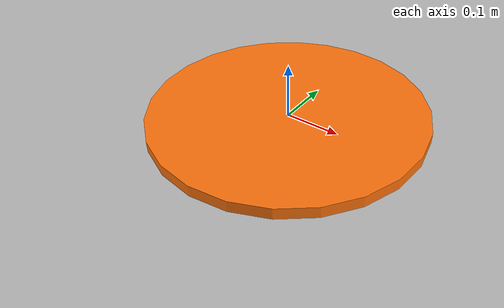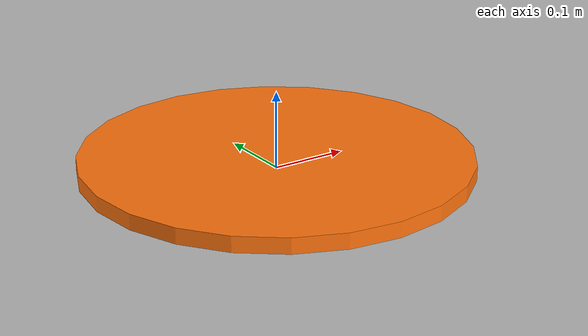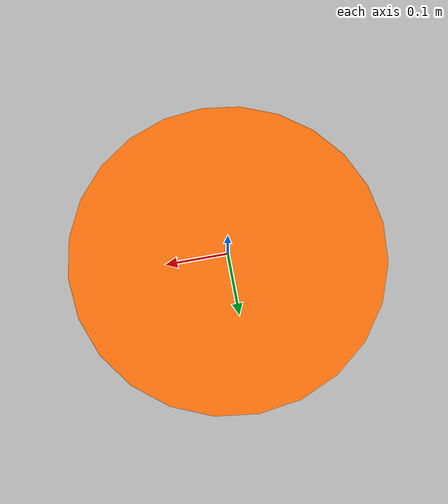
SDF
<?xml version="1.0" encoding="UTF-8"?>
<sdf version="1.9">
  <world name="allsmoke">

    <physics type="ode">
      <max_step_size>0.004</max_step_size>
      <real_time_factor>1.0</real_time_factor>
      <real_time_update_rate>250</real_time_update_rate>
    </physics>
    <gravity>0 0 -9.8</gravity>
    <magnetic_field>6e-06 2.3e-05 -4.2e-05</magnetic_field>
    <atmosphere type="adiabatic"/>

    <scene>
      <grid>false</grid>
      <ambient>0.45 0.45 0.45 1</ambient>
      <background>0.62 0.72 0.85 1</background>
      <shadows>true</shadows>
    </scene>

    <light name="sunUTC" type="directional">
      <pose>0 0 500 0 0 0</pose>
      <cast_shadows>true</cast_shadows>
      <intensity>1</intensity>
      <direction>0.3 0.5 -0.81</direction>
      <diffuse>0.95 0.93 0.88 1</diffuse>
      <specular>0.3 0.3 0.3 1</specular>
      <attenuation>
        <range>2000</range>
        <linear>0</linear>
        <constant>1</constant>
        <quadratic>0</quadratic>
      </attenuation>
      <spot>
        <inner_angle>0</inner_angle>
        <outer_angle>0</outer_angle>
        <falloff>0</falloff>
      </spot>
    </light>

    <include>
      <uri>model://allsmoke_terrain</uri>
      <name>allsmoke_terrain</name>
      <pose>0 0 0 0 0 0</pose>
    </include>

    <!-- The survey fiducial. FIDUCIAL_SURVEYED_* in .env holds its
         coordinate; the drone measures it to align frames. -->
    <model name="fiducial_marker">
      <static>true</static>
      <pose>0.000 0.000 0.012 0 0 0.0000</pose>
      <link name="link">
        <visual name="visual">
          <geometry>
            <cylinder>
              <radius>0.250</radius>
              <length>0.02</length>
            </cylinder>
          </geometry>
          <material>
            <ambient>1 0.45 0.05 1</ambient>
            <diffuse>1 0.45 0.05 1</diffuse>
            <specular>0.1 0.1 0.1 1</specular>
          </material>
        </visual>
      </link>
    </model>

    <spherical_coordinates>
      <surface_model>EARTH_WGS84</surface_model>
      <world_frame_orientation>ENU</world_frame_orientation>
      <latitude_deg>39.0968000</latitude_deg>
      <longitude_deg>-120.0324000</longitude_deg>
      <elevation>1897.55</elevation>
    </spherical_coordinates>

  </world>
</sdf>

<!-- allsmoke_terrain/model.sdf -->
<sdf version="1.9">
  <model name="allsmoke_terrain">
    <static>true</static>
    <link name="link">
      <collision name="collision">
        <geometry><mesh><uri>model://allsmoke_terrain/meshes/terrain.dae</uri></mesh></geometry>
        <surface><friction><ode/></friction><bounce/><contact/></surface>
      </collision>
      <visual name="visual">
        <geometry><mesh><uri>model://allsmoke_terrain/meshes/terrain.dae</uri></mesh></geometry>
      </visual>
    </link>
  </model>
</sdf>
